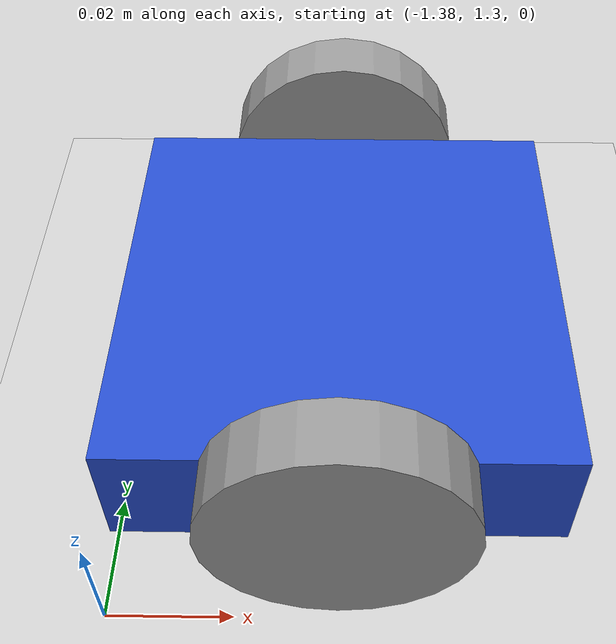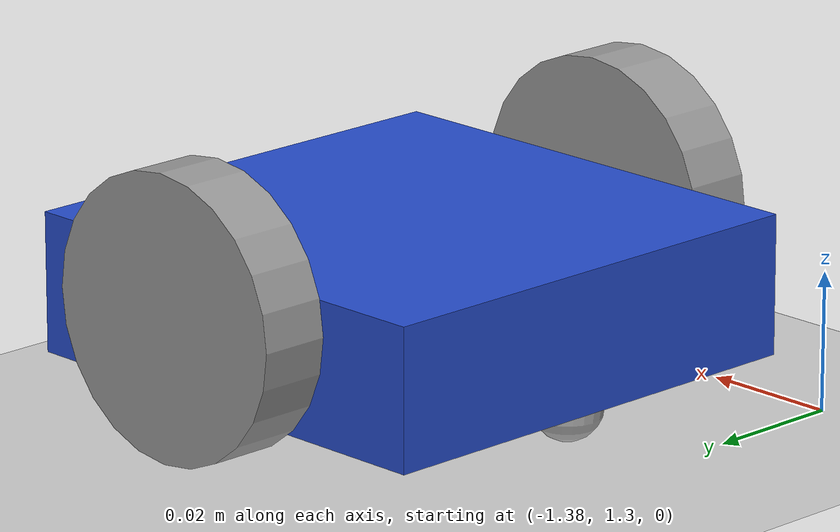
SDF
<?xml version="1.0"?>
<sdf version="1.6">
  <world name="default">
    <include>
      <uri>model://ground_plane</uri>
    </include>

    <include>
      <uri>model://sun</uri>
    </include>

    <include>
      <pose>-1.344 1.344 0.025 0 0 1.5707963267</pose>
      <uri>model://mouse</uri>
    </include>

    <gui>
      <plugin name="sample" filename="libregenerate_widget.so"/>
    </gui>

    <plugin name="maze" filename="libmaze_plugin.so"/>

		<physics type="ode">
			<!--go as fast as possible!-->
      <real_time_update_rate>1000.0</real_time_update_rate>
    </physics>
  </world>
</sdf>

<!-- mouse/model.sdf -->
<sdf version='1.6'>
  <model name='mouse'>
    <link name='base'>
      <pose>0 -0 0.005 0 -0 0</pose>
      <inertial>
        <pose frame=''>0 0.01 0 0 -0 0</pose>
        <mass>0.5</mass>
        <inertia>
          <ixx>0.00022083</ixx>
          <ixy>0</ixy>
          <ixz>0</ixz>
          <iyy>0.00022083</iyy>
          <iyz>0</iyz>
          <izz>0.00040833</izz>
        </inertia>
      </inertial>
      <visual name='castor_visual'>
        <pose frame=''>0 0.03 -0.02 0 -0 0</pose>
        <geometry>
          <sphere>
            <radius>0.005</radius>
          </sphere>
        </geometry>
      </visual>
      <visual name='visual'>
        <pose frame=''>0 0 -0.01 0 -0 0</pose>
        <geometry>
          <box>
            <size>0.07 0.07 0.02</size>
          </box>
        </geometry>
        <material>
          <script>
            <uri>file://media/materials/scripts/gazebo.material</uri>
            <name>Gazebo/Blue</name>
          </script>
        </material>
      </visual>
      <collision name='castor_collision'>
        <pose frame=''>0 0.03 -0.02 0 -0 0</pose>
        <geometry>
          <sphere>
            <radius>0.005</radius>
          </sphere>
        </geometry>
        <surface>
          <friction>
            <ode>
              <mu>0</mu>
              <mu2>0</mu2>
              <fdir1>0 0 0</fdir1>
              <slip1>1</slip1>
              <slip2>1</slip2>
            </ode>
            <torsional>
              <ode>
                <slip>1</slip>
              </ode>
            </torsional>
          </friction>
          <contact>
            <ode>
              <soft_cfm>0</soft_cfm>
              <soft_erp>0.2</soft_erp>
              <kp>1000000.0</kp>
              <kd>100.0</kd>
              <max_vel>0.01</max_vel>
              <min_depth>0</min_depth>
            </ode>
          </contact>
        </surface>
      </collision>
      <collision name='collision'>
        <pose frame=''>0 0 -0.01 0 0 0</pose>
        <geometry>
          <box>
            <size>0.07 0.07 0.02</size>
          </box>
        </geometry>
        <surface>
          <friction>
            <ode>
              <mu>1</mu>
              <mu2>1</mu2>
              <fdir1>0 0 0</fdir1>
              <slip1>0</slip1>
              <slip2>0</slip2>
            </ode>
          </friction>
          <contact>
            <ode>
              <soft_cfm>0</soft_cfm>
              <soft_erp>0.2</soft_erp>
              <kp>1e13</kp>
              <kd>1.0</kd>
              <max_vel>0.01</max_vel>
              <min_depth>0</min_depth>
            </ode>
          </contact>
        </surface>
      </collision>
      <sensor name="laser" type="ray">
        <pose>0 0.02 0.004 0 0 0</pose>
        <ray>
          <scan>
            <horizontal>
              <samples>3</samples>
              <resolution>1</resolution>
              <min_angle>0.52359877</min_angle>
              <max_angle>2.61799387</max_angle>
            </horizontal>
          </scan>
          <range>
            <min>0.01</min>
            <max>0.2</max>
            <resolution>0.005</resolution>
          </range>
        </ray>
        <plugin name="laser" filename="libRayPlugin.so" />
        <always_on>1</always_on>
        <update_rate>10</update_rate>
        <visualize>true</visualize>
      </sensor>
    </link>
    <link name='right_wheel'>
      <pose frame=''>0.04 0.0 0 0 1.57079 0</pose>
      <inertial>
        <mass>0.01</mass>
        <inertia>
          <ixx>2.3e-06</ixx>
          <ixy>0</ixy>
          <ixz>0</ixz>
          <iyy>2.3e-06</iyy>
          <iyz>0</iyz>
          <izz>4.5e-06</izz>
        </inertia>
        <pose frame=''>0 0 0 0 -0 0</pose>
      </inertial>
      <self_collide>0</self_collide>
      <kinematic>0</kinematic>
      <gravity>1</gravity>
      <visual name='visual'>
        <pose frame=''>0 0 0 0 -0 0</pose>
        <geometry>
          <cylinder>
            <radius>0.02</radius>
            <length>0.01</length>
          </cylinder>
        </geometry>
        <material>
          <lighting>1</lighting>
          <script>
            <uri>file://media/materials/scripts/gazebo.material</uri>
            <name>Gazebo/Grey</name>
          </script>
          <ambient>0.3 0.3 0.3 1</ambient>
          <diffuse>0.7 0.7 0.7 1</diffuse>
          <specular>0.01 0.01 0.01 1</specular>
          <emissive>0 0 0 1</emissive>
          <shader type='vertex'>
            <normal_map>__default__</normal_map>
          </shader>
        </material>
        <cast_shadows>1</cast_shadows>
        <transparency>0</transparency>
      </visual>
      <collision name='collision'>
        <laser_retro>0</laser_retro>
        <max_contacts>10</max_contacts>
        <pose frame=''>0 0 0 0 -0 0</pose>
        <geometry>
          <cylinder>
            <radius>0.02</radius>
            <length>0.01</length>
          </cylinder>
        </geometry>
        <surface>
          <friction>
            <ode>
              <mu>10</mu>
              <mu2>10</mu2>
            </ode>
            <torsional>
              <coefficient>1</coefficient>
              <patch_radius>0</patch_radius>
              <surface_radius>0</surface_radius>
              <use_patch_radius>1</use_patch_radius>
              <ode>
                <slip>0</slip>
              </ode>
            </torsional>
          </friction>
          <bounce>
            <restitution_coefficient>0</restitution_coefficient>
            <threshold>1e+06</threshold>
          </bounce>
          <contact>
            <collide_without_contact>0</collide_without_contact>
            <collide_without_contact_bitmask>1</collide_without_contact_bitmask>
            <collide_bitmask>1</collide_bitmask>
            <ode>
              <soft_cfm>0</soft_cfm>
              <soft_erp>0.2</soft_erp>
              <kp>1000000.0</kp>
              <kd>100.0</kd>
              <max_vel>0.01</max_vel>
              <min_depth>0</min_depth>
            </ode>
          </contact>
        </surface>
      </collision>
    </link>
    <link name='left_wheel'>
      <pose frame=''>-0.04 0.0 0 0 1.57079 0</pose>
      <inertial>
        <mass>0.01</mass>
        <inertia>
          <ixx>2.3e-06</ixx>
          <ixy>0</ixy>
          <ixz>0</ixz>
          <iyy>2.3e-06</iyy>
          <iyz>0</iyz>
          <izz>4.5e-06</izz>
        </inertia>
      </inertial>
      <self_collide>0</self_collide>
      <kinematic>0</kinematic>
      <visual name='visual'>
        <pose frame=''>0 0 0 0 -0 0</pose>
        <geometry>
          <cylinder>
            <radius>0.02</radius>
            <length>0.01</length>
          </cylinder>
        </geometry>
        <material>
          <lighting>1</lighting>
          <script>
            <uri>file://media/materials/scripts/gazebo.material</uri>
            <name>Gazebo/Grey</name>
          </script>
          <ambient>0.3 0.3 0.3 1</ambient>
          <diffuse>0.7 0.7 0.7 1</diffuse>
          <specular>0.01 0.01 0.01 1</specular>
          <emissive>0 0 0 1</emissive>
          <shader type='vertex'>
            <normal_map>__default__</normal_map>
          </shader>
        </material>
        <cast_shadows>1</cast_shadows>
        <transparency>0</transparency>
      </visual>
      <collision name='collision'>
        <laser_retro>0</laser_retro>
        <max_contacts>10</max_contacts>
        <pose frame=''>0 0 0 0 -0 0</pose>
        <geometry>
          <cylinder>
            <radius>0.02</radius>
            <length>0.01</length>
          </cylinder>
        </geometry>
        <surface>
          <friction>
            <ode>
              <mu>10</mu>
              <mu2>10</mu2>
            </ode>
            <torsional>
              <coefficient>1</coefficient>
              <patch_radius>0</patch_radius>
              <surface_radius>0</surface_radius>
              <use_patch_radius>1</use_patch_radius>
              <ode>
                <slip>0</slip>
              </ode>
            </torsional>
          </friction>
          <bounce>
            <restitution_coefficient>0</restitution_coefficient>
            <threshold>1e+06</threshold>
          </bounce>
          <contact>
            <collide_without_contact>0</collide_without_contact>
            <collide_without_contact_bitmask>1</collide_without_contact_bitmask>
            <collide_bitmask>1</collide_bitmask>
            <ode>
              <soft_cfm>0</soft_cfm>
              <soft_erp>0.2</soft_erp>
              <kp>1000000.0</kp>
              <kd>100.0</kd>
              <max_vel>0.01</max_vel>
              <min_depth>0</min_depth>
            </ode>
          </contact>
        </surface>
      </collision>
    </link>
    <joint name='left_wheel_joint' type='revolute'>
      <parent>base</parent>
      <child>left_wheel</child>
      <pose frame=''>0 0 0 0 -0 0</pose>
      <axis>
        <xyz>0 0 -1</xyz>
        <use_parent_model_frame>0</use_parent_model_frame>
        <limit>
          <lower>-1.79769e+308</lower>
          <upper>1.79769e+308</upper>
          <effort>-1</effort>
          <velocity>100</velocity>
        </limit>
        <dynamics>
          <spring_reference>0</spring_reference>
          <spring_stiffness>0</spring_stiffness>
          <damping>0.01</damping>
          <friction>0</friction>
        </dynamics>
      </axis>
      <physics>
        <ode>
          <implicit_spring_damper>true</implicit_spring_damper>
          <limit>
            <cfm>0</cfm>
            <erp>0.2</erp>
          </limit>
          <suspension>
            <cfm>0</cfm>
            <erp>0.2</erp>
          </suspension>
        </ode>
      </physics>
    </joint>
    <joint name='right_wheel_joint' type='revolute'>
      <parent>base</parent>
      <child>right_wheel</child>
      <pose frame=''>0 0 0 0 -0 0</pose>
      <axis>
        <xyz>0 0 -1</xyz>
        <use_parent_model_frame>0</use_parent_model_frame>
        <limit>
          <lower>-1.79769e+308</lower>
          <upper>1.79769e+308</upper>
          <effort>-1</effort>
          <velocity>100</velocity>
        </limit>
        <dynamics>
          <spring_reference>0</spring_reference>
          <spring_stiffness>0</spring_stiffness>
          <damping>0.01</damping>
          <friction>0</friction>
        </dynamics>
      </axis>
      <physics>
        <ode>
          <implicit_spring_damper>true</implicit_spring_damper>
          <limit>
            <cfm>0</cfm>
            <erp>0.2</erp>
          </limit>
          <suspension>
            <cfm>0</cfm>
            <erp>0.2</erp>
          </suspension>
        </ode>
      </physics>
    </joint>
    <static>0</static>
    <allow_auto_disable>1</allow_auto_disable>
		<plugin name="mouse_plugin" filename="libMousePlugin.so">
      <left_wheel_joint>left_wheel_joint</left_wheel_joint>
      <right_wheel_joint>right_wheel_joint</right_wheel_joint>
      <body>base</body>
		</plugin>
  </model>
</sdf>
